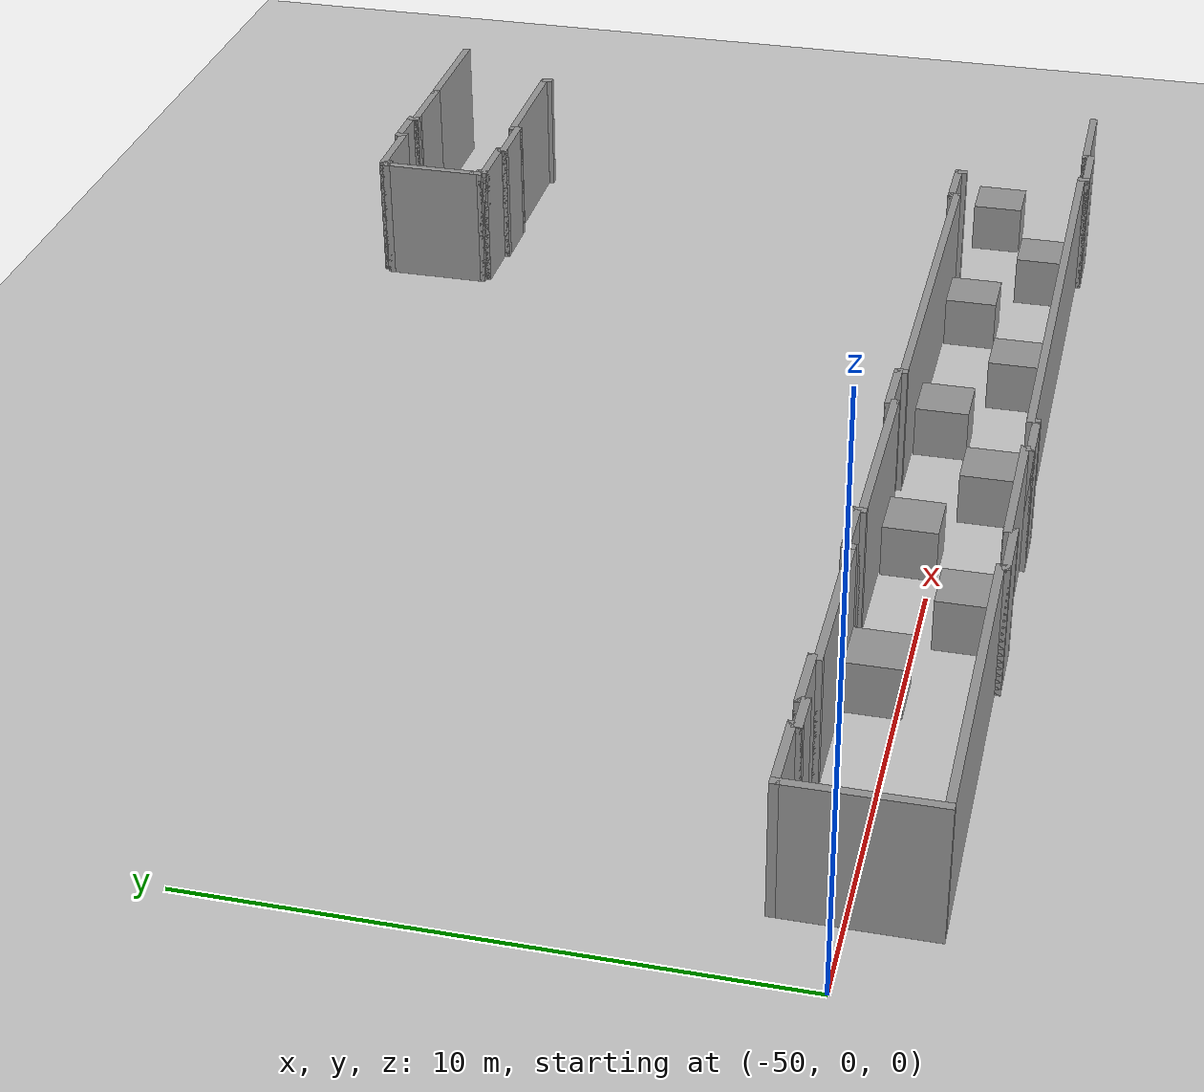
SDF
<sdf version="1.6">
 <world name="default">
  <model name="ground_plane">
   <static>1</static>
   <link name="link">
    <collision name="collision">
     <geometry><plane><normal>0 0 1</normal><size>100 100</size></plane></geometry>
     <surface><friction><ode><mu>100</mu><mu2>50</mu2></ode></friction></surface>
    </collision>
    <visual name="visual">
     <cast_shadows>0</cast_shadows>
     <geometry><plane><normal>0 0 1</normal><size>100 100</size></plane></geometry>
     <material>
      <script><uri>file://media/materials/scripts/gazebo.material</uri><name>Gazebo/Grey</name></script>
     </material>
    </visual>
   </link>
  </model>
  <model name="hallway">
   <pose>-18.4373 5.74333 0 0 -0 0</pose>
   <link name="Wall_10">
    <collision name="Wall_10_Collision">
     <geometry><box><size>0.25 0.15 2.5</size></box></geometry>
     <pose>0 0 1.25 0 -0 0</pose>
    </collision>
    <visual name="Wall_10_Visual">
     <pose>0 0 1.25 0 -0 0</pose>
     <geometry><box><size>0.25 0.15 2.5</size></box></geometry>
     <material>
      <script><uri>file://media/materials/scripts/gazebo.material</uri><name>Gazebo/Grey</name></script>
      <ambient>1 1 1 1</ambient>
     </material>
    </visual>
    <pose>-20.275 -7.2 0 0 0 -1.5708</pose>
   </link>
   <link name="Wall_104">
    <collision name="Wall_104_Collision">
     <geometry><box><size>2.5 0.15 2.5</size></box></geometry>
     <pose>0 0 1.25 0 -0 0</pose>
    </collision>
    <visual name="Wall_104_Visual">
     <pose>0 0 1.25 0 -0 0</pose>
     <geometry><box><size>2.5 0.15 2.5</size></box></geometry>
     <material>
      <script><uri>file://media/materials/scripts/gazebo.material</uri><name>Gazebo/Grey</name></script>
      <ambient>1 1 1 1</ambient>
     </material>
    </visual>
    <pose>-7.05 7.15 0 0 -0 3.14159</pose>
   </link>
   <link name="Wall_106">
    <collision name="Wall_106_Collision">
     <geometry><box><size>1.5 0.15 2.5</size></box></geometry>
     <pose>0 0 1.25 0 -0 0</pose>
    </collision>
    <visual name="Wall_106_Visual">
     <pose>0 0 1.25 0 -0 0</pose>
     <geometry><box><size>1.5 0.15 2.5</size></box></geometry>
     <material>
      <script><uri>file://media/materials/scripts/gazebo.material</uri><name>Gazebo/Grey</name></script>
      <ambient>1 1 1 1</ambient>
     </material>
    </visual>
    <pose>-8.9 7.15 0 0 -0 3.14159</pose>
   </link>
   <link name="Wall_107">
    <collision name="Wall_107_Collision">
     <geometry><box><size>0.25 0.15 2.5</size></box></geometry>
     <pose>0 0 1.25 0 -0 0</pose>
    </collision>
    <visual name="Wall_107_Visual">
     <pose>0 0 1.25 0 -0 0</pose>
     <geometry><box><size>0.25 0.15 2.5</size></box></geometry>
     <material>
      <script><uri>file://media/materials/scripts/gazebo.material</uri><name>Gazebo/Grey</name></script>
      <ambient>1 1 1 1</ambient>
     </material>
    </visual>
    <pose>-9.625 7.15 0 0 -0 3.14159</pose>
   </link>
   <link name="Wall_108">
    <collision name="Wall_108_Collision">
     <geometry><box><size>0.25 0.15 2.5</size></box></geometry>
     <pose>0 0 1.25 0 -0 0</pose>
    </collision>
    <visual name="Wall_108_Visual">
     <pose>0 0 1.25 0 -0 0</pose>
     <geometry><box><size>0.25 0.15 2.5</size></box></geometry>
     <material>
      <script><uri>file://media/materials/scripts/gazebo.material</uri><name>Gazebo/Grey</name></script>
      <ambient>1 1 1 1</ambient>
     </material>
    </visual>
    <pose>-9.675 7.2 0 0 -0 1.5708</pose>
   </link>
   <link name="Wall_109">
    <collision name="Wall_109_Collision">
     <geometry><box><size>1 0.15 2.5</size></box></geometry>
     <pose>0 0 1.25 0 -0 0</pose>
    </collision>
    <visual name="Wall_109_Visual">
     <pose>0 0 1.25 0 -0 0</pose>
     <geometry><box><size>1 0.15 2.5</size></box></geometry>
     <material>
      <script><uri>file://media/materials/scripts/gazebo.material</uri><name>Gazebo/Grey</name></script>
      <ambient>1 1 1 1</ambient>
     </material>
    </visual>
    <pose>-10.1 7.25 0 0 -0 3.14159</pose>
   </link>
   <link name="Wall_11">
    <collision name="Wall_11_Collision">
     <geometry><box><size>1 0.15 2.5</size></box></geometry>
     <pose>0 0 1.25 0 -0 0</pose>
    </collision>
    <visual name="Wall_11_Visual">
     <pose>0 0 1.25 0 -0 0</pose>
     <geometry><box><size>1 0.15 2.5</size></box></geometry>
     <material>
      <script><uri>file://media/materials/scripts/gazebo.material</uri><name>Gazebo/Grey</name></script>
      <ambient>1 1 1 1</ambient>
     </material>
    </visual>
    <pose>-19.85 -7.25 0 0 -0 0</pose>
   </link>
   <link name="Wall_110">
    <collision name="Wall_110_Collision">
     <geometry><box><size>0.25 0.15 2.5</size></box></geometry>
     <pose>0 0 1.25 0 -0 0</pose>
    </collision>
    <visual name="Wall_110_Visual">
     <pose>0 0 1.25 0 -0 0</pose>
     <geometry><box><size>0.25 0.15 2.5</size></box></geometry>
     <material>
      <script><uri>file://media/materials/scripts/gazebo.material</uri><name>Gazebo/Grey</name></script>
      <ambient>1 1 1 1</ambient>
     </material>
    </visual>
    <pose>-10.525 7.2 0 0 0 -1.5708</pose>
   </link>
   <link name="Wall_111">
    <collision name="Wall_111_Collision">
     <geometry><box><size>1.5 0.15 2.5</size></box></geometry>
     <pose>0 0 1.25 0 -0 0</pose>
    </collision>
    <visual name="Wall_111_Visual">
     <pose>0 0 1.25 0 -0 0</pose>
     <geometry><box><size>1.5 0.15 2.5</size></box></geometry>
     <material>
      <script><uri>file://media/materials/scripts/gazebo.material</uri><name>Gazebo/Grey</name></script>
      <ambient>1 1 1 1</ambient>
     </material>
    </visual>
    <pose>-11.2 7.15 0 0 -0 3.14159</pose>
   </link>
   <link name="Wall_112">
    <collision name="Wall_112_Collision">
     <geometry><box><size>0.25 0.15 2.5</size></box></geometry>
     <pose>0 0 1.25 0 -0 0</pose>
    </collision>
    <visual name="Wall_112_Visual">
     <pose>0 0 1.25 0 -0 0</pose>
     <geometry><box><size>0.25 0.15 2.5</size></box></geometry>
     <material>
      <script><uri>file://media/materials/scripts/gazebo.material</uri><name>Gazebo/Grey</name></script>
      <ambient>1 1 1 1</ambient>
     </material>
    </visual>
    <pose>-11.875 7.1 0 0 0 -1.5708</pose>
   </link>
   <link name="Wall_113">
    <collision name="Wall_113_Collision">
     <geometry><box><size>0.25 0.15 2.5</size></box></geometry>
     <pose>0 0 1.25 0 -0 0</pose>
    </collision>
    <visual name="Wall_113_Visual">
     <pose>0 0 1.25 0 -0 0</pose>
     <geometry><box><size>0.25 0.15 2.5</size></box></geometry>
     <material>
      <script><uri>file://media/materials/scripts/gazebo.material</uri><name>Gazebo/Grey</name></script>
      <ambient>1 1 1 1</ambient>
     </material>
    </visual>
    <pose>-11.925 7.05 0 0 -0 3.14159</pose>
   </link>
   <link name="Wall_114">
    <collision name="Wall_114_Collision">
     <geometry><box><size>2.03478 0.15 2.5</size></box></geometry>
     <pose>0 0 1.25 0 -0 0</pose>
    </collision>
    <visual name="Wall_114_Visual">
     <pose>0 0 1.25 0 -0 0</pose>
     <geometry><box><size>2.03478 0.15 2.5</size></box></geometry>
     <material>
      <script><uri>file://media/materials/scripts/gazebo.material</uri><name>Gazebo/Grey</name></script>
      <ambient>1 1 1 1</ambient>
     </material>
    </visual>
    <pose>-11.975 6.10761 0 0 0 -1.5708</pose>
   </link>
   <link name="Wall_115">
    <collision name="Wall_115_Collision">
     <geometry><box><size>0.15 0.15 2.5</size></box></geometry>
     <pose>0 0 1.25 0 -0 0</pose>
    </collision>
    <visual name="Wall_115_Visual">
     <pose>0 0 1.25 0 -0 0</pose>
     <geometry><box><size>0.15 0.15 2.5</size></box></geometry>
     <material>
      <script><uri>file://media/materials/scripts/gazebo.material</uri><name>Gazebo/Grey</name></script>
      <ambient>1 1 1 1</ambient>
     </material>
    </visual>
    <pose>-11.975 5.16522 0 0 -0 0</pose>
   </link>
   <link name="Wall_12">
    <collision name="Wall_12_Collision">
     <geometry><box><size>0.25 0.15 2.5</size></box></geometry>
     <pose>0 0 1.25 0 -0 0</pose>
    </collision>
    <visual name="Wall_12_Visual">
     <pose>0 0 1.25 0 -0 0</pose>
     <geometry><box><size>0.25 0.15 2.5</size></box></geometry>
     <material>
      <script><uri>file://media/materials/scripts/gazebo.material</uri><name>Gazebo/Grey</name></script>
      <ambient>1 1 1 1</ambient>
     </material>
    </visual>
    <pose>-19.375 -7.25 0 0 -0 0</pose>
   </link>
   <link name="Wall_128">
    <collision name="Wall_128_Collision">
     <geometry><box><size>0.25 0.15 2.5</size></box></geometry>
     <pose>0 0 1.25 0 -0 0</pose>
    </collision>
    <visual name="Wall_128_Visual">
     <pose>0 0 1.25 0 -0 0</pose>
     <geometry><box><size>0.25 0.15 2.5</size></box></geometry>
     <material>
      <script><uri>file://media/materials/scripts/gazebo.material</uri><name>Gazebo/Grey</name></script>
      <ambient>1 1 1 1</ambient>
     </material>
    </visual>
    <pose>-11.975 5.11522 0 0 0 -1.5708</pose>
   </link>
   <link name="Wall_129">
    <collision name="Wall_129_Collision">
     <geometry><box><size>0.25 0.15 2.5</size></box></geometry>
     <pose>0 0 1.25 0 -0 0</pose>
    </collision>
    <visual name="Wall_129_Visual">
     <pose>0 0 1.25 0 -0 0</pose>
     <geometry><box><size>0.25 0.15 2.5</size></box></geometry>
     <material>
      <script><uri>file://media/materials/scripts/gazebo.material</uri><name>Gazebo/Grey</name></script>
      <ambient>1 1 1 1</ambient>
     </material>
    </visual>
    <pose>-11.925 5.06522 0 0 -0 0</pose>
   </link>
   <link name="Wall_13">
    <collision name="Wall_13_Collision">
     <geometry><box><size>0.25 0.15 2.5</size></box></geometry>
     <pose>0 0 1.25 0 -0 0</pose>
    </collision>
    <visual name="Wall_13_Visual">
     <pose>0 0 1.25 0 -0 0</pose>
     <geometry><box><size>0.25 0.15 2.5</size></box></geometry>
     <material>
      <script><uri>file://media/materials/scripts/gazebo.material</uri><name>Gazebo/Grey</name></script>
      <ambient>1 1 1 1</ambient>
     </material>
    </visual>
    <pose>-19.325 -7.2 0 0 -0 1.5708</pose>
   </link>
   <link name="Wall_130">
    <collision name="Wall_130_Collision">
     <geometry><box><size>0.25 0.15 2.5</size></box></geometry>
     <pose>0 0 1.25 0 -0 0</pose>
    </collision>
    <visual name="Wall_130_Visual">
     <pose>0 0 1.25 0 -0 0</pose>
     <geometry><box><size>0.25 0.15 2.5</size></box></geometry>
     <material>
      <script><uri>file://media/materials/scripts/gazebo.material</uri><name>Gazebo/Grey</name></script>
      <ambient>1 1 1 1</ambient>
     </material>
    </visual>
    <pose>-11.875 5.01522 0 0 0 -1.5708</pose>
   </link>
   <link name="Wall_131">
    <collision name="Wall_131_Collision">
     <geometry><box><size>1.25 0.15 2.5</size></box></geometry>
     <pose>0 0 1.25 0 -0 0</pose>
    </collision>
    <visual name="Wall_131_Visual">
     <pose>0 0 1.25 0 -0 0</pose>
     <geometry><box><size>1.25 0.15 2.5</size></box></geometry>
     <material>
      <script><uri>file://media/materials/scripts/gazebo.material</uri><name>Gazebo/Grey</name></script>
      <ambient>1 1 1 1</ambient>
     </material>
    </visual>
    <pose>-11.325 4.96522 0 0 -0 0</pose>
   </link>
   <link name="Wall_132">
    <collision name="Wall_132_Collision">
     <geometry><box><size>0.25 0.15 2.5</size></box></geometry>
     <pose>0 0 1.25 0 -0 0</pose>
    </collision>
    <visual name="Wall_132_Visual">
     <pose>0 0 1.25 0 -0 0</pose>
     <geometry><box><size>0.25 0.15 2.5</size></box></geometry>
     <material>
      <script><uri>file://media/materials/scripts/gazebo.material</uri><name>Gazebo/Grey</name></script>
      <ambient>1 1 1 1</ambient>
     </material>
    </visual>
    <pose>-10.775 4.91522 0 0 0 -1.5708</pose>
   </link>
   <link name="Wall_133">
    <collision name="Wall_133_Collision">
     <geometry><box><size>1.25 0.15 2.5</size></box></geometry>
     <pose>0 0 1.25 0 -0 0</pose>
    </collision>
    <visual name="Wall_133_Visual">
     <pose>0 0 1.25 0 -0 0</pose>
     <geometry><box><size>1.25 0.15 2.5</size></box></geometry>
     <material>
      <script><uri>file://media/materials/scripts/gazebo.material</uri><name>Gazebo/Grey</name></script>
      <ambient>1 1 1 1</ambient>
     </material>
    </visual>
    <pose>-10.225 4.86522 0 0 -0 0</pose>
   </link>
   <link name="Wall_134">
    <collision name="Wall_134_Collision">
     <geometry><box><size>0.25 0.15 2.5</size></box></geometry>
     <pose>0 0 1.25 0 -0 0</pose>
    </collision>
    <visual name="Wall_134_Visual">
     <pose>0 0 1.25 0 -0 0</pose>
     <geometry><box><size>0.25 0.15 2.5</size></box></geometry>
     <material>
      <script><uri>file://media/materials/scripts/gazebo.material</uri><name>Gazebo/Grey</name></script>
      <ambient>1 1 1 1</ambient>
     </material>
    </visual>
    <pose>-9.675 4.91522 0 0 -0 1.5708</pose>
   </link>
   <link name="Wall_135">
    <collision name="Wall_135_Collision">
     <geometry><box><size>2.75 0.15 2.5</size></box></geometry>
     <pose>0 0 1.25 0 -0 0</pose>
    </collision>
    <visual name="Wall_135_Visual">
     <pose>0 0 1.25 0 -0 0</pose>
     <geometry><box><size>2.75 0.15 2.5</size></box></geometry>
     <material>
      <script><uri>file://media/materials/scripts/gazebo.material</uri><name>Gazebo/Grey</name></script>
      <ambient>1 1 1 1</ambient>
     </material>
    </visual>
    <pose>-8.375 4.96522 0 0 -0 0</pose>
   </link>
   <link name="Wall_136">
    <collision name="Wall_136_Collision">
     <geometry><box><size>0.25 0.15 2.5</size></box></geometry>
     <pose>0 0 1.25 0 -0 0</pose>
    </collision>
    <visual name="Wall_136_Visual">
     <pose>0 0 1.25 0 -0 0</pose>
     <geometry><box><size>0.25 0.15 2.5</size></box></geometry>
     <material>
      <script><uri>file://media/materials/scripts/gazebo.material</uri><name>Gazebo/Grey</name></script>
      <ambient>1 1 1 1</ambient>
     </material>
    </visual>
    <pose>-7.075 4.91522 0 0 0 -1.5708</pose>
   </link>
   <link name="Wall_14">
    <collision name="Wall_14_Collision">
     <geometry><box><size>10 0.15 2.5</size></box></geometry>
     <pose>0 0 1.25 0 -0 0</pose>
    </collision>
    <visual name="Wall_14_Visual">
     <pose>0 0 1.25 0 -0 0</pose>
     <geometry><box><size>10 0.15 2.5</size></box></geometry>
     <material>
      <script><uri>file://media/materials/scripts/gazebo.material</uri><name>Gazebo/Grey</name></script>
      <ambient>1 1 1 1</ambient>
     </material>
    </visual>
    <pose>-14.4 -7.15 0 0 -0 0</pose>
   </link>
   <link name="Wall_15">
    <collision name="Wall_15_Collision">
     <geometry><box><size>0.25 0.15 2.5</size></box></geometry>
     <pose>0 0 1.25 0 -0 0</pose>
    </collision>
    <visual name="Wall_15_Visual">
     <pose>0 0 1.25 0 -0 0</pose>
     <geometry><box><size>0.25 0.15 2.5</size></box></geometry>
     <material>
      <script><uri>file://media/materials/scripts/gazebo.material</uri><name>Gazebo/Grey</name></script>
      <ambient>1 1 1 1</ambient>
     </material>
    </visual>
    <pose>-9.475 -7.2 0 0 0 -1.5708</pose>
   </link>
   <link name="Wall_16">
    <collision name="Wall_16_Collision">
     <geometry><box><size>1.25 0.15 2.5</size></box></geometry>
     <pose>0 0 1.25 0 -0 0</pose>
    </collision>
    <visual name="Wall_16_Visual">
     <pose>0 0 1.25 0 -0 0</pose>
     <geometry><box><size>1.25 0.15 2.5</size></box></geometry>
     <material>
      <script><uri>file://media/materials/scripts/gazebo.material</uri><name>Gazebo/Grey</name></script>
      <ambient>1 1 1 1</ambient>
     </material>
    </visual>
    <pose>-8.925 -7.25 0 0 -0 0</pose>
   </link>
   <link name="Wall_164">
    <collision name="Wall_164_Collision">
     <geometry><box><size>0.25 0.15 2.5</size></box></geometry>
     <pose>0 0 1.25 0 -0 0</pose>
    </collision>
    <visual name="Wall_164_Visual">
     <pose>0 0 1.25 0 -0 0</pose>
     <geometry><box><size>0.25 0.15 2.5</size></box></geometry>
     <material>
      <script><uri>file://media/materials/scripts/gazebo.material</uri><name>Gazebo/Grey</name></script>
      <ambient>1 1 1 1</ambient>
     </material>
    </visual>
    <pose>-9.675 -4.68478 0 0 -0 1.5708</pose>
   </link>
   <link name="Wall_165">
    <collision name="Wall_165_Collision">
     <geometry><box><size>1.25 0.15 2.5</size></box></geometry>
     <pose>0 0 1.25 0 -0 0</pose>
    </collision>
    <visual name="Wall_165_Visual">
     <pose>0 0 1.25 0 -0 0</pose>
     <geometry><box><size>1.25 0.15 2.5</size></box></geometry>
     <material>
      <script><uri>file://media/materials/scripts/gazebo.material</uri><name>Gazebo/Grey</name></script>
      <ambient>1 1 1 1</ambient>
     </material>
    </visual>
    <pose>-10.225 -4.63478 0 0 -0 3.14159</pose>
   </link>
   <link name="Wall_166">
    <collision name="Wall_166_Collision">
     <geometry><box><size>0.25 0.15 2.5</size></box></geometry>
     <pose>0 0 1.25 0 -0 0</pose>
    </collision>
    <visual name="Wall_166_Visual">
     <pose>0 0 1.25 0 -0 0</pose>
     <geometry><box><size>0.25 0.15 2.5</size></box></geometry>
     <material>
      <script><uri>file://media/materials/scripts/gazebo.material</uri><name>Gazebo/Grey</name></script>
      <ambient>1 1 1 1</ambient>
     </material>
    </visual>
    <pose>-10.775 -4.68478 0 0 0 -1.5708</pose>
   </link>
   <link name="Wall_167">
    <collision name="Wall_167_Collision">
     <geometry><box><size>7.5 0.15 2.5</size></box></geometry>
     <pose>0 0 1.25 0 -0 0</pose>
    </collision>
    <visual name="Wall_167_Visual">
     <pose>0 0 1.25 0 -0 0</pose>
     <geometry><box><size>7.5 0.15 2.5</size></box></geometry>
     <material>
      <script><uri>file://media/materials/scripts/gazebo.material</uri><name>Gazebo/Grey</name></script>
      <ambient>1 1 1 1</ambient>
     </material>
    </visual>
    <pose>-14.45 -4.73478 0 0 -0 3.14159</pose>
   </link>
   <link name="Wall_168">
    <collision name="Wall_168_Collision">
     <geometry><box><size>0.25 0.15 2.5</size></box></geometry>
     <pose>0 0 1.25 0 -0 0</pose>
    </collision>
    <visual name="Wall_168_Visual">
     <pose>0 0 1.25 0 -0 0</pose>
     <geometry><box><size>0.25 0.15 2.5</size></box></geometry>
     <material>
      <script><uri>file://media/materials/scripts/gazebo.material</uri><name>Gazebo/Grey</name></script>
      <ambient>1 1 1 1</ambient>
     </material>
    </visual>
    <pose>-18.125 -4.68478 0 0 -0 1.5708</pose>
   </link>
   <link name="Wall_169">
    <collision name="Wall_169_Collision">
     <geometry><box><size>1.25 0.15 2.5</size></box></geometry>
     <pose>0 0 1.25 0 -0 0</pose>
    </collision>
    <visual name="Wall_169_Visual">
     <pose>0 0 1.25 0 -0 0</pose>
     <geometry><box><size>1.25 0.15 2.5</size></box></geometry>
     <material>
      <script><uri>file://media/materials/scripts/gazebo.material</uri><name>Gazebo/Grey</name></script>
      <ambient>1 1 1 1</ambient>
     </material>
    </visual>
    <pose>-18.675 -4.63478 0 0 -0 3.14159</pose>
   </link>
   <link name="Wall_17">
    <collision name="Wall_17_Collision">
     <geometry><box><size>0.25 0.15 2.5</size></box></geometry>
     <pose>0 0 1.25 0 -0 0</pose>
    </collision>
    <visual name="Wall_17_Visual">
     <pose>0 0 1.25 0 -0 0</pose>
     <geometry><box><size>0.25 0.15 2.5</size></box></geometry>
     <material>
      <script><uri>file://media/materials/scripts/gazebo.material</uri><name>Gazebo/Grey</name></script>
      <ambient>1 1 1 1</ambient>
     </material>
    </visual>
    <pose>-8.375 -7.2 0 0 -0 1.5708</pose>
   </link>
   <link name="Wall_170">
    <collision name="Wall_170_Collision">
     <geometry><box><size>0.25 0.15 2.5</size></box></geometry>
     <pose>0 0 1.25 0 -0 0</pose>
    </collision>
    <visual name="Wall_170_Visual">
     <pose>0 0 1.25 0 -0 0</pose>
     <geometry><box><size>0.25 0.15 2.5</size></box></geometry>
     <material>
      <script><uri>file://media/materials/scripts/gazebo.material</uri><name>Gazebo/Grey</name></script>
      <ambient>1 1 1 1</ambient>
     </material>
    </visual>
    <pose>-19.225 -4.68478 0 0 0 -1.5708</pose>
   </link>
   <link name="Wall_171">
    <collision name="Wall_171_Collision">
     <geometry><box><size>3.75 0.15 2.5</size></box></geometry>
     <pose>0 0 1.25 0 -0 0</pose>
    </collision>
    <visual name="Wall_171_Visual">
     <pose>0 0 1.25 0 -0 0</pose>
     <geometry><box><size>3.75 0.15 2.5</size></box></geometry>
     <material>
      <script><uri>file://media/materials/scripts/gazebo.material</uri><name>Gazebo/Grey</name></script>
      <ambient>1 1 1 1</ambient>
     </material>
    </visual>
    <pose>-21.025 -4.73478 0 0 -0 3.14159</pose>
   </link>
   <link name="Wall_172">
    <collision name="Wall_172_Collision">
     <geometry><box><size>0.25 0.15 2.5</size></box></geometry>
     <pose>0 0 1.25 0 -0 0</pose>
    </collision>
    <visual name="Wall_172_Visual">
     <pose>0 0 1.25 0 -0 0</pose>
     <geometry><box><size>0.25 0.15 2.5</size></box></geometry>
     <material>
      <script><uri>file://media/materials/scripts/gazebo.material</uri><name>Gazebo/Grey</name></script>
      <ambient>1 1 1 1</ambient>
     </material>
    </visual>
    <pose>-22.825 -4.68478 0 0 -0 1.5708</pose>
   </link>
   <link name="Wall_173">
    <collision name="Wall_173_Collision">
     <geometry><box><size>1.25 0.15 2.5</size></box></geometry>
     <pose>0 0 1.25 0 -0 0</pose>
    </collision>
    <visual name="Wall_173_Visual">
     <pose>0 0 1.25 0 -0 0</pose>
     <geometry><box><size>1.25 0.15 2.5</size></box></geometry>
     <material>
      <script><uri>file://media/materials/scripts/gazebo.material</uri><name>Gazebo/Grey</name></script>
      <ambient>1 1 1 1</ambient>
     </material>
    </visual>
    <pose>-23.375 -4.63478 0 0 -0 3.14159</pose>
   </link>
   <link name="Wall_174">
    <collision name="Wall_174_Collision">
     <geometry><box><size>0.25 0.15 2.5</size></box></geometry>
     <pose>0 0 1.25 0 -0 0</pose>
    </collision>
    <visual name="Wall_174_Visual">
     <pose>0 0 1.25 0 -0 0</pose>
     <geometry><box><size>0.25 0.15 2.5</size></box></geometry>
     <material>
      <script><uri>file://media/materials/scripts/gazebo.material</uri><name>Gazebo/Grey</name></script>
      <ambient>1 1 1 1</ambient>
     </material>
    </visual>
    <pose>-23.925 -4.68478 0 0 0 -1.5708</pose>
   </link>
   <link name="Wall_175">
    <collision name="Wall_175_Collision">
     <geometry><box><size>3.25 0.15 2.5</size></box></geometry>
     <pose>0 0 1.25 0 -0 0</pose>
    </collision>
    <visual name="Wall_175_Visual">
     <pose>0 0 1.25 0 -0 0</pose>
     <geometry><box><size>3.25 0.15 2.5</size></box></geometry>
     <material>
      <script><uri>file://media/materials/scripts/gazebo.material</uri><name>Gazebo/Grey</name></script>
      <ambient>1 1 1 1</ambient>
     </material>
    </visual>
    <pose>-25.475 -4.73478 0 0 -0 3.14159</pose>
   </link>
   <link name="Wall_176">
    <collision name="Wall_176_Collision">
     <geometry><box><size>0.25 0.15 2.5</size></box></geometry>
     <pose>0 0 1.25 0 -0 0</pose>
    </collision>
    <visual name="Wall_176_Visual">
     <pose>0 0 1.25 0 -0 0</pose>
     <geometry><box><size>0.25 0.15 2.5</size></box></geometry>
     <material>
      <script><uri>file://media/materials/scripts/gazebo.material</uri><name>Gazebo/Grey</name></script>
      <ambient>1 1 1 1</ambient>
     </material>
    </visual>
    <pose>-27.025 -4.68478 0 0 -0 1.5708</pose>
   </link>
   <link name="Wall_177">
    <collision name="Wall_177_Collision">
     <geometry><box><size>1.25 0.15 2.5</size></box></geometry>
     <pose>0 0 1.25 0 -0 0</pose>
    </collision>
    <visual name="Wall_177_Visual">
     <pose>0 0 1.25 0 -0 0</pose>
     <geometry><box><size>1.25 0.15 2.5</size></box></geometry>
     <material>
      <script><uri>file://media/materials/scripts/gazebo.material</uri><name>Gazebo/Grey</name></script>
      <ambient>1 1 1 1</ambient>
     </material>
    </visual>
    <pose>-27.575 -4.63478 0 0 -0 3.14159</pose>
   </link>
   <link name="Wall_178">
    <collision name="Wall_178_Collision">
     <geometry><box><size>0.25 0.15 2.5</size></box></geometry>
     <pose>0 0 1.25 0 -0 0</pose>
    </collision>
    <visual name="Wall_178_Visual">
     <pose>0 0 1.25 0 -0 0</pose>
     <geometry><box><size>0.25 0.15 2.5</size></box></geometry>
     <material>
      <script><uri>file://media/materials/scripts/gazebo.material</uri><name>Gazebo/Grey</name></script>
      <ambient>1 1 1 1</ambient>
     </material>
    </visual>
    <pose>-28.125 -4.68478 0 0 0 -1.5708</pose>
   </link>
   <link name="Wall_179">
    <collision name="Wall_179_Collision">
     <geometry><box><size>0.75 0.15 2.5</size></box></geometry>
     <pose>0 0 1.25 0 -0 0</pose>
    </collision>
    <visual name="Wall_179_Visual">
     <pose>0 0 1.25 0 -0 0</pose>
     <geometry><box><size>0.75 0.15 2.5</size></box></geometry>
     <material>
      <script><uri>file://media/materials/scripts/gazebo.material</uri><name>Gazebo/Grey</name></script>
      <ambient>1 1 1 1</ambient>
     </material>
    </visual>
    <pose>-28.425 -4.73478 0 0 -0 3.14159</pose>
   </link>
   <link name="Wall_18">
    <collision name="Wall_18_Collision">
     <geometry><box><size>2 0.15 2.5</size></box></geometry>
     <pose>0 0 1.25 0 -0 0</pose>
    </collision>
    <visual name="Wall_18_Visual">
     <pose>0 0 1.25 0 -0 0</pose>
     <geometry><box><size>2 0.15 2.5</size></box></geometry>
     <material>
      <script><uri>file://media/materials/scripts/gazebo.material</uri><name>Gazebo/Grey</name></script>
      <ambient>1 1 1 1</ambient>
     </material>
    </visual>
    <pose>-7.45 -7.15 0 0 -0 0</pose>
   </link>
   <link name="Wall_180">
    <collision name="Wall_180_Collision">
     <geometry><box><size>0.25 0.15 2.5</size></box></geometry>
     <pose>0 0 1.25 0 -0 0</pose>
    </collision>
    <visual name="Wall_180_Visual">
     <pose>0 0 1.25 0 -0 0</pose>
     <geometry><box><size>0.25 0.15 2.5</size></box></geometry>
     <material>
      <script><uri>file://media/materials/scripts/gazebo.material</uri><name>Gazebo/Grey</name></script>
      <ambient>1 1 1 1</ambient>
     </material>
    </visual>
    <pose>-28.725 -4.68478 0 0 -0 1.5708</pose>
   </link>
   <link name="Wall_181">
    <collision name="Wall_181_Collision">
     <geometry><box><size>1.5 0.15 2.5</size></box></geometry>
     <pose>0 0 1.25 0 -0 0</pose>
    </collision>
    <visual name="Wall_181_Visual">
     <pose>0 0 1.25 0 -0 0</pose>
     <geometry><box><size>1.5 0.15 2.5</size></box></geometry>
     <material>
      <script><uri>file://media/materials/scripts/gazebo.material</uri><name>Gazebo/Grey</name></script>
      <ambient>1 1 1 1</ambient>
     </material>
    </visual>
    <pose>-29.4 -4.63478 0 0 -0 3.14159</pose>
   </link>
   <link name="Wall_182">
    <collision name="Wall_182_Collision">
     <geometry><box><size>2.66522 0.15 2.5</size></box></geometry>
     <pose>0 0 1.25 0 -0 0</pose>
    </collision>
    <visual name="Wall_182_Visual">
     <pose>0 0 1.25 0 -0 0</pose>
     <geometry><box><size>2.66522 0.15 2.5</size></box></geometry>
     <material>
      <script><uri>file://media/materials/scripts/gazebo.material</uri><name>Gazebo/Grey</name></script>
      <ambient>1 1 1 1</ambient>
     </material>
    </visual>
    <pose>-30.075 -5.89239 0 0 0 -1.5708</pose>
   </link>
   <link name="Wall_5">
    <collision name="Wall_5_Collision">
     <geometry><box><size>6.25 0.15 2.5</size></box></geometry>
     <pose>0 0 1.25 0 -0 0</pose>
    </collision>
    <visual name="Wall_5_Visual">
     <pose>0 0 1.25 0 -0 0</pose>
     <geometry><box><size>6.25 0.15 2.5</size></box></geometry>
     <material>
      <script><uri>file://media/materials/scripts/gazebo.material</uri><name>Gazebo/Grey</name></script>
      <ambient>1 1 1 1</ambient>
     </material>
    </visual>
    <pose>-27.025 -7.15 0 0 -0 0</pose>
   </link>
   <link name="Wall_6">
    <collision name="Wall_6_Collision">
     <geometry><box><size>0.25 0.15 2.5</size></box></geometry>
     <pose>0 0 1.25 0 -0 0</pose>
    </collision>
    <visual name="Wall_6_Visual">
     <pose>0 0 1.25 0 -0 0</pose>
     <geometry><box><size>0.25 0.15 2.5</size></box></geometry>
     <material>
      <script><uri>file://media/materials/scripts/gazebo.material</uri><name>Gazebo/Grey</name></script>
      <ambient>1 1 1 1</ambient>
     </material>
    </visual>
    <pose>-23.975 -7.2 0 0 0 -1.5708</pose>
   </link>
   <link name="Wall_7">
    <collision name="Wall_7_Collision">
     <geometry><box><size>1.25 0.15 2.5</size></box></geometry>
     <pose>0 0 1.25 0 -0 0</pose>
    </collision>
    <visual name="Wall_7_Visual">
     <pose>0 0 1.25 0 -0 0</pose>
     <geometry><box><size>1.25 0.15 2.5</size></box></geometry>
     <material>
      <script><uri>file://media/materials/scripts/gazebo.material</uri><name>Gazebo/Grey</name></script>
      <ambient>1 1 1 1</ambient>
     </material>
    </visual>
    <pose>-23.425 -7.25 0 0 -0 0</pose>
   </link>
   <link name="Wall_8">
    <collision name="Wall_8_Collision">
     <geometry><box><size>0.25 0.15 2.5</size></box></geometry>
     <pose>0 0 1.25 0 -0 0</pose>
    </collision>
    <visual name="Wall_8_Visual">
     <pose>0 0 1.25 0 -0 0</pose>
     <geometry><box><size>0.25 0.15 2.5</size></box></geometry>
     <material>
      <script><uri>file://media/materials/scripts/gazebo.material</uri><name>Gazebo/Grey</name></script>
      <ambient>1 1 1 1</ambient>
     </material>
    </visual>
    <pose>-22.875 -7.2 0 0 -0 1.5708</pose>
   </link>
   <link name="Wall_9">
    <collision name="Wall_9_Collision">
     <geometry><box><size>2.75 0.15 2.5</size></box></geometry>
     <pose>0 0 1.25 0 -0 0</pose>
    </collision>
    <visual name="Wall_9_Visual">
     <pose>0 0 1.25 0 -0 0</pose>
     <geometry><box><size>2.75 0.15 2.5</size></box></geometry>
     <material>
      <script><uri>file://media/materials/scripts/gazebo.material</uri><name>Gazebo/Grey</name></script>
      <ambient>1 1 1 1</ambient>
     </material>
    </visual>
    <pose>-21.575 -7.15 0 0 -0 0</pose>
   </link>
   <static>1</static>
  </model>
  <model name="unit_box_14">
   <pose>-26.124 0.370227 0.499995 0 -1e-05 0</pose>
   <link name="link">
    <inertial>
     <mass>1</mass>
     <inertia>
      <ixx>0.166667</ixx>
      <ixy>0</ixy>
      <ixz>0</ixz>
      <iyy>0.166667</iyy>
      <iyz>0</iyz>
      <izz>0.166667</izz>
     </inertia>
    </inertial>
    <collision name="collision"><geometry><box><size>1 1 1</size></box></geometry></collision>
    <visual name="visual">
     <geometry><box><size>1 1 1</size></box></geometry>
     <material>
      <script><name>Gazebo/Grey</name><uri>file://media/materials/scripts/gazebo.material</uri></script>
     </material>
    </visual>
   </link>
  </model>
  <model name="unit_box_15">
   <pose>-28.3929 -0.788412 0.499995 1e-05 -0 0</pose>
   <link name="link">
    <inertial>
     <mass>1</mass>
     <inertia>
      <ixx>0.166667</ixx>
      <ixy>0</ixy>
      <ixz>0</ixz>
      <iyy>0.166667</iyy>
      <iyz>0</iyz>
      <izz>0.166667</izz>
     </inertia>
    </inertial>
    <collision name="collision"><geometry><box><size>1 1 1</size></box></geometry></collision>
    <visual name="visual">
     <geometry><box><size>1 1 1</size></box></geometry>
     <material>
      <script><name>Gazebo/Grey</name><uri>file://media/materials/scripts/gazebo.material</uri></script>
     </material>
    </visual>
   </link>
  </model>
  <model name="unit_box_16">
   <pose>-30.4602 0.407911 0.499995 0 -1e-05 0</pose>
   <link name="link">
    <inertial>
     <mass>1</mass>
     <inertia>
      <ixx>0.166667</ixx>
      <ixy>0</ixy>
      <ixz>0</ixz>
      <iyy>0.166667</iyy>
      <iyz>0</iyz>
      <izz>0.166667</izz>
     </inertia>
    </inertial>
    <collision name="collision"><geometry><box><size>1 1 1</size></box></geometry></collision>
    <visual name="visual">
     <geometry><box><size>1 1 1</size></box></geometry>
     <material>
      <script><name>Gazebo/Grey</name><uri>file://media/materials/scripts/gazebo.material</uri></script>
     </material>
    </visual>
   </link>
  </model>
  <model name="unit_box_17">
   <pose>-32.7977 -0.724981 0.499995 1e-05 -0 0</pose>
   <link name="link">
    <inertial>
     <mass>1</mass>
     <inertia>
      <ixx>0.166667</ixx>
      <ixy>0</ixy>
      <ixz>0</ixz>
      <iyy>0.166667</iyy>
      <iyz>0</iyz>
      <izz>0.166667</izz>
     </inertia>
    </inertial>
    <collision name="collision"><geometry><box><size>1 1 1</size></box></geometry></collision>
    <visual name="visual">
     <geometry><box><size>1 1 1</size></box></geometry>
     <material>
      <script><name>Gazebo/Grey</name><uri>file://media/materials/scripts/gazebo.material</uri></script>
     </material>
    </visual>
   </link>
  </model>
  <model name="unit_box_18">
   <pose>-34.8218 0.404542 0.499995 1e-05 -0 0</pose>
   <link name="link">
    <inertial>
     <mass>1</mass>
     <inertia>
      <ixx>0.166667</ixx>
      <ixy>0</ixy>
      <ixz>0</ixz>
      <iyy>0.166667</iyy>
      <iyz>0</iyz>
      <izz>0.166667</izz>
     </inertia>
    </inertial>
    <collision name="collision"><geometry><box><size>1 1 1</size></box></geometry></collision>
    <visual name="visual">
     <geometry><box><size>1 1 1</size></box></geometry>
     <material>
      <script><name>Gazebo/Grey</name><uri>file://media/materials/scripts/gazebo.material</uri></script>
     </material>
    </visual>
   </link>
  </model>
  <model name="unit_box_19">
   <pose>-36.963 -0.70238 0.499995 0 -1e-05 0</pose>
   <link name="link">
    <inertial>
     <mass>1</mass>
     <inertia>
      <ixx>0.166667</ixx>
      <ixy>0</ixy>
      <ixz>0</ixz>
      <iyy>0.166667</iyy>
      <iyz>0</iyz>
      <izz>0.166667</izz>
     </inertia>
    </inertial>
    <collision name="collision"><geometry><box><size>1 1 1</size></box></geometry></collision>
    <visual name="visual">
     <geometry><box><size>1 1 1</size></box></geometry>
     <material>
      <script><name>Gazebo/Grey</name><uri>file://media/materials/scripts/gazebo.material</uri></script>
     </material>
    </visual>
   </link>
  </model>
  <model name="unit_box_20">
   <pose>-38.9324 0.404131 0.499995 1e-05 -0 0</pose>
   <link name="link">
    <inertial>
     <mass>1</mass>
     <inertia>
      <ixx>0.166667</ixx>
      <ixy>0</ixy>
      <ixz>0</ixz>
      <iyy>0.166667</iyy>
      <iyz>0</iyz>
      <izz>0.166667</izz>
     </inertia>
    </inertial>
    <collision name="collision"><geometry><box><size>1 1 1</size></box></geometry></collision>
    <visual name="visual">
     <geometry><box><size>1 1 1</size></box></geometry>
     <material>
      <script><name>Gazebo/Grey</name><uri>file://media/materials/scripts/gazebo.material</uri></script>
     </material>
    </visual>
   </link>
  </model>
  <model name="unit_box_21">
   <pose>-40.9576 -0.79017 0.499995 1e-05 -0 0</pose>
   <link name="link">
    <inertial>
     <mass>1</mass>
     <inertia>
      <ixx>0.166667</ixx>
      <ixy>0</ixy>
      <ixz>0</ixz>
      <iyy>0.166667</iyy>
      <iyz>0</iyz>
      <izz>0.166667</izz>
     </inertia>
    </inertial>
    <collision name="collision"><geometry><box><size>1 1 1</size></box></geometry></collision>
    <visual name="visual">
     <geometry><box><size>1 1 1</size></box></geometry>
     <material>
      <script><name>Gazebo/Grey</name><uri>file://media/materials/scripts/gazebo.material</uri></script>
     </material>
    </visual>
   </link>
  </model>
  <model name="unit_box_22">
   <pose>-42.9861 0.406282 0.499995 0 -1e-05 0</pose>
   <link name="link">
    <inertial>
     <mass>1</mass>
     <inertia>
      <ixx>0.166667</ixx>
      <ixy>0</ixy>
      <ixz>0</ixz>
      <iyy>0.166667</iyy>
      <iyz>0</iyz>
      <izz>0.166667</izz>
     </inertia>
    </inertial>
    <collision name="collision"><geometry><box><size>1 1 1</size></box></geometry></collision>
    <visual name="visual">
     <geometry><box><size>1 1 1</size></box></geometry>
     <material>
      <script><name>Gazebo/Grey</name><uri>file://media/materials/scripts/gazebo.material</uri></script>
     </material>
    </visual>
   </link>
  </model>
 </world>
</sdf>
